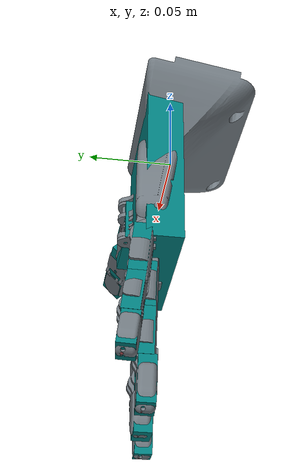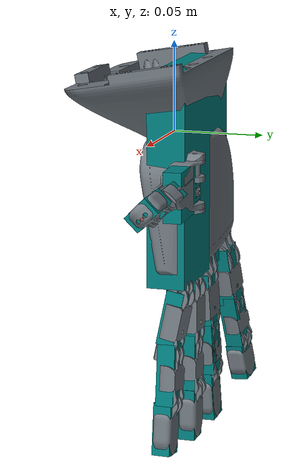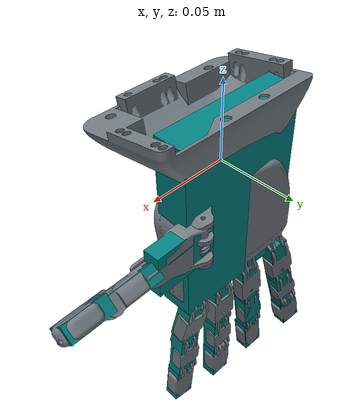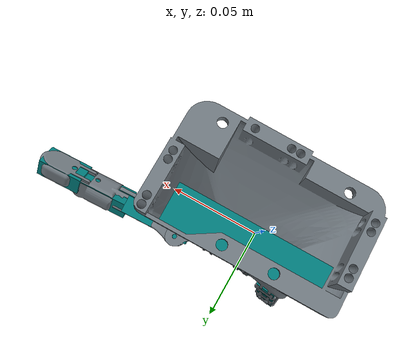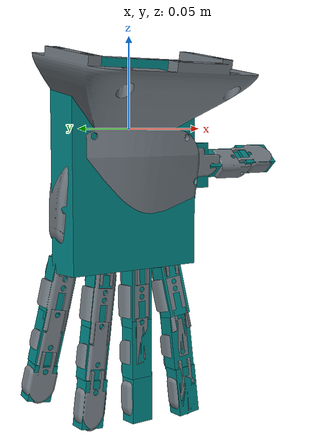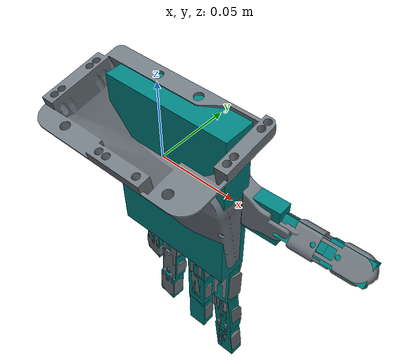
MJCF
<mujoco model="Hand Assembly_URDF">
  <!-- Compiler settings for the model -->
  <compiler angle="radian"
    boundmass="0.001"
    boundinertia="0.001"
    settotalmass="1"/>
  <option gravity="0 -9.81 0"/>

  <!-- Asset definitions for finger meshes and materials -->
  <asset>
    <mesh name="Palm" file="meshes/Palm.STL"/>
    <mesh name="Index_MCP" file="meshes/Index_MCP.STL"/>
    <mesh name="Index_DIP" file="meshes/Index_DIP.STL"/>
    <mesh name="Index_PIP" file="meshes/Index_PIP.STL"/>
    <mesh name="Middle_MCP" file="meshes/Middle_MCP.STL"/>
    <mesh name="Middle_DIP" file="meshes/Middle_DIP.STL"/>
    <mesh name="Middle_PIP" file="meshes/Middle_PIP.STL"/>
    <mesh name="Ring_MCP" file="meshes/Ring_MCP.STL"/>
    <mesh name="Ring_DIP" file="meshes/Ring_DIP.STL"/>
    <mesh name="Ring_PIP" file="meshes/Ring_PIP.STL"/>
    <mesh name="Pinky_MCP" file="meshes/Pinky_MCP.STL"/>
    <mesh name="Pinky_DIP" file="meshes/Pinky_DIP.STL"/>
    <mesh name="Pinky_PIP" file="meshes/Pinky_PIP.STL"/>
    <mesh name="Thumb_MCP" file="meshes/Thumb_MCP.STL"/>
    <mesh name="Thumb_DIP" file="meshes/Thumb_DIP.STL"/>
    <mesh name="Thumb_PIP" file="meshes/Thumb_PIP.STL"/>
    <material name="contact_point_material" rgba="0.737 0.285 0.251 1" specular="0"/>
    <texture name="grid" type="2d" builtin="checker" rgb1=".1 .2 .3"
     rgb2=".2 .3 .4" width="300" height="300"/>
    <material name="grid" texture="grid" texrepeat="100.0 100.0" reflectance=".2"/>
  </asset>

  <!-- Default settings for visual, joint, and collision properties -->
  <default>
    <!-- default classes for friction -->
    <default class="visual">
      <geom friction="1 0.005 0.001" conaffinity="0" contype="0" condim="3"/>
    </default>

    <!-- Add default joint properties for mechanical feel -->
    <default class="joint">
      <joint damping="0.05" armature="0.001" frictionloss="0.01"/>
    </default>

    <!-- default classes for collision -->
    <default class="collision">
      <geom group="2" friction="1.5 0.01 0.001" conaffinity="2" contype="2" condim="3" rgba="0 0.5 0.5 1" density="0" margin="0.001"/>
    </default>
  </default>

  <visual>
    <global azimuth="180" elevation="-20"/>
    <headlight ambient="0.3 0.3 0.3" diffuse="0.6 0.6 0.6" specular="0 0 0"/>
  </visual>

  <!-- World body definition with nested bodies for each finger -->
  <worldbody>

    <!-- Add world reference frame -->
    <body name="world_frame" pos="0 0 0">
      <body name="Palm_Link" pos="0 0 0">
        <joint name="Palm_Joint" type="slide" axis="1 0 0" range="-0.00001 0"/>
        <geom type="mesh" class="visual" rgba="0.439216 0.47451 0.501961 1" mesh="Palm" name="Palm"/>
        <geom name="Palm_c" type="box" size="0.042 0.0105 0.058" pos="0.004 0.009 -0.02" quat="1 0 0 0" class="collision" />

        <!-- Index finger -->
        <body name="Index_MCP_Link" pos="0.0322 0.0146007 -0.08022" quat="-0.410779 0.525515 0.556422 0.495469">
          <inertial pos="0.0288724 -1.28993e-08 0.00378475" quat="0 0.706065 0 0.708147" mass="0.00327912" diaginertia="4.20817e-07 3.58574e-07 1.41288e-07"/>
          <joint name="Index_MCP_Joint" pos="0 0 0" axis="0 1.0 0" range="0 2.44222" class="joint"/>
          <geom pos="-0.016 0.005 0.0001" quat="1 0 0 0" type="box" class="collision" size="0.015 0.007 0.005" name="Index_MCP_C" />
          <geom pos="-0.046 0.005 -0.003" quat="1 0 0 0" type="mesh" class="visual" rgba="0.439216 0.47451 0.501961 1" mesh="Index_MCP" name="Index_MCP"/>
          <body name="Index_DIP_Link" pos="-0.035057 0 0.002" quat="0.996195 0 0.0871543 0">
            <inertial pos="0.000734414 -1.34435e-07 0.00333493" quat="0 0.724885 0 0.68887" mass="0.0030053" diaginertia="2.77975e-07 2.50136e-07 9.09498e-08"/>
            <joint name="Index_DIP_Joint" pos="0 0 0" axis="0 1 0" range="0 2.09" class="joint"/>
            <geom pos="-0.012 0.005 -0.003" quat="1 0 0 0" type="mesh" class="visual" rgba="0.439216 0.47451 0.501961 1" mesh="Index_DIP" name="Index_DIP" />
            <geom pos="-0.012 0.005 0.00" quat="1 0 0 0" type="box" class="collision"  size="0.017 0.007 0.005" name="Index_DIP_c" />
            <body name="Index_PIP_Link" pos="-0.027 0.0045 0.001">
              <inertial pos="-0.0274083 1.00211e-07 0.00320314" quat="3.68488e-06 0.687097 -3.89655e-06 0.726565" mass="0.00356977" diaginertia="3.32817e-07 2.91756e-07 1.1129e-07"/>
              <joint name="Index_PIP_Joint" pos="0 0 0" axis="0 1 0" range="0 2.09" class="joint"/>
              <geom pos="0.013 0.0004 -0.005"  type="mesh" class="visual" rgba="0.439216 0.47451 0.501961 1" mesh="Index_PIP" name="Index_PIP" />
              <geom pos="-0.015 0.0004 -0.002"  type="box" class="collision" size="0.0145 0.007 0.005" name="Index_PIP_c" />
              <geom type="sphere" size="0.001" pos="-0.03 0 0" rgba="1 0 0 0.3" class="visual" name="Index_TIP"/>
            </body>
          </body>
        </body>

        <!-- Middle finger -->
        <body name="Middle_MCP_Link" pos="0.01518 0.0135414 -0.081" quat="0.5 -0.5 -0.5 -0.5">
          <inertial pos="0.0288724 -9.49408e-09 0.00378477" quat="0 0.706065 0 0.708147" mass="0.00327911" diaginertia="4.20815e-07 3.58572e-07 1.41288e-07"/>
          <joint name="Middle_MCP_Joint" pos="0 0 0" axis="0 1 0" range="0 2.44222" class="joint"/>
          <geom pos="-0.046 0 -0.003" quat="1 0 0 0" type="mesh" class="visual" rgba="0.439216 0.47451 0.501961 1" mesh="Middle_MCP" name="Middle_MCP" />
          <geom pos="-0.016 0 0.0001" quat="1 0 0 0" type="box" class="collision" size="0.017 0.007 0.005" name="Middle_MCP_c" />
          <body name="Middle_DIP_Link" pos="-0.034 0 0">
            <inertial pos="0.000734412 -1.31357e-07 0.00333494" quat="0 0.724885 0 0.68887" mass="0.0030053" diaginertia="2.77975e-07 2.50136e-07 9.09499e-08"/>
            <joint name="Middle_DIP_Joint" pos="0 0 0" axis="0 1 0" range="0 2.09" class="joint"/>
            <geom pos="-0.012 0 -0.003" quat="1 0 0 0" type="mesh" class="visual" rgba="0.439216 0.47451 0.501961 1" mesh="Middle_DIP" name="Middle_DIP" />
            <geom pos="-0.012 0 0" quat="1 0 0 0" type="box" class="collision" size="0.017 0.007 0.005" name="Middle_DIP_c" />
            <body name="Middle_PIP_Link" pos="-0.026 0 0.002">
              <inertial pos="-0.0274083 9.97469e-08 0.00320314" quat="3.35268e-06 0.687097 -3.54527e-06 0.726565" mass="0.00356977" diaginertia="3.32817e-07 2.91756e-07 1.1129e-07"/>
              <joint name="Middle_PIP_Joint" pos="0 0 0" axis="0 1 0" range="0 2.09" class="joint"/>
              <geom pos="0.014 0 -0.0045" quat="1 0 0 0" type="mesh" class="visual" rgba="0.439216 0.47451 0.501961 1" mesh="Middle_PIP" name="Middle_PIP" />
              <geom pos="-0.015 0.0004 -0.002" quat="1 0 0 0" type="box" class="collision" size="0.0145 0.007 0.005" name="Middle_PIP_c" />
              <geom type="sphere" size="0.001" pos="-0.029 0.000 0.00" rgba="1 0 0 0.3" class="visual" name="Middle_TIP"/>
            </body>
          </body>
        </body>

        <!-- Ring finger -->
        <body name="Ring_MCP_Link" pos="-0.0088 0.01453 -0.08009" quat="0.519479 -0.531219 -0.449398 -0.495973">
          <inertial pos="0.0288724 -7.11557e-09 0.00378476" quat="0 0.706065 0 0.708147" mass="0.00327912" diaginertia="4.20817e-07 3.58574e-07 1.41288e-07"/>
          <joint name="Ring_MCP_Joint" pos="0 0 0" axis="0 1 0" range="0 2.44222" class="joint"/>
          <geom pos="-0.046 0 -0.004" quat="1 0 0 0" type="mesh" class="visual" rgba="0.439216 0.47451 0.501961 1" mesh="Ring_MCP" name="Ring_MCP" />
          <geom pos="-0.016 0 0.0001" quat="1 0 0 0" type="box" class="collision" size="0.015 0.007 0.005" name="Ring_MCP_c" />
          <body name="Ring_DIP_Link" pos="-0.036 0 0">
            <inertial pos="0.000734409 -1.29347e-07 0.00333494" quat="0 0.724885 0 0.68887" mass="0.00300529" diaginertia="2.77975e-07 2.50136e-07 9.09499e-08"/>
            <joint name="Ring_DIP_Joint" pos="0 0 0" axis="0 1 0" range="0 2.09" class="joint"/>
            <geom pos="-0.01 0 -0.004" quat="1 0 0 0" type="mesh" class="visual" rgba="0.439216 0.47451 0.501961 1" mesh="Ring_DIP" name="Ring_DIP" />
            <geom pos="-0.01 0 0" quat="1 0 0 0" type="box" class="collision" size="0.015 0.007 0.005" name="Ring_DIP_c" />
            <body name="Ring_PIP_Link" pos="-0.025746 0 0">
              <inertial pos="-0.0274083 1.00945e-07 0.00320315" quat="3.216e-06 0.687098 -3.40073e-06 0.726565" mass="0.00356976" diaginertia="3.32816e-07 2.91756e-07 1.1129e-07"/>
              <joint name="Ring_PIP_Joint" pos="0 0 0" axis="0 1 0" range="0 2.09" class="joint"/>
              <geom pos="0.015 0 -0.005" quat="1 0 0 0" type="mesh" class="visual" rgba="0.439216 0.47451 0.501961 1" mesh="Ring_PIP" name="Ring_PIP" />
              <geom pos="-0.013 0.0001 -0.0017" quat="1 0 0 0" type="box" class="collision" size="0.014 0.007 0.005" name="Ring_PIP_c" />
              <geom type="sphere" size="0.001" pos="-0.028 0.000 0.00" rgba="1 0 0 0.3" class="visual" name="Ring_TIP"/>
            </body>
          </body>
        </body>

        <!-- Pinky finger -->
        <body name="Pinky_MCP_Link" pos="-0.030617 0.020313 -0.07398" quat="0.535562 -0.548866 -0.394288 -0.506416">
          <inertial pos="0.0268917 -2.1328e-08 0.00337657" quat="2.96624e-06 0.709985 -2.94214e-06 0.704217" mass="0.00308279" diaginertia="3.86718e-07 3.31476e-07 1.30735e-07"/>
          <joint name="Pinky_MCP_Joint" pos="0 0 0" axis="0 1 0" range="0 2.44222" class="joint"/>
          <geom pos="-0.042 0 -0.004" quat="1 0 0 0" type="mesh" class="visual" rgba="0.439216 0.47451 0.501961 1" mesh="Pinky_MCP" name="Pinky_MCP" />
          <geom pos="-0.014 0 -0.00" quat="1 0 0 0" type="box" class="collision" size="0.017 0.007 0.005" name="Pinky_MCP_c" />
          <body name="Pinky_DIP_Link" pos="-0.032 0 0" quat="0.999904 0 0.0138671 0">
            <inertial pos="0.000757212 -1.38277e-07 0.00329943" quat="0 0.728086 0 0.685486" mass="0.00260945" diaginertia="2.12533e-07 1.89485e-07 7.7225e-08"/>
            <joint name="Pinky_DIP_Joint" pos="0 0 0" axis="0 1 0" range="0 2.09" class="joint"/>
            <geom pos="-0.01 0 -0.0037" quat="1 0 0 0" type="mesh" class="visual" rgba="0.439216 0.47451 0.501961 1" mesh="Pinky_DIP" name="Pinky_DIP" />
            <geom pos="-0.01 0 -0.000" quat="1 0 0 0" type="box" class="collision" size="0.015 0.007 0.005" name="Pinky_DIP_c" />
            <body name="Pinky_PIP_Link" pos="-0.023 0 0.001">
              <inertial pos="-0.0236575 -8.70958e-08 0.00338829" quat="4.96235e-06 0.688645 -5.22503e-06 0.725099" mass="0.00306875" diaginertia="2.3085e-07 1.96147e-07 9.6228e-08"/>
              <joint name="Pinky_PIP_Joint" pos="0 0 0" axis="0 1 0" range="0 2.09" class="joint"/>
              <geom pos="0.013 0 -0.005" quat="1 0 0 0" type="mesh" class="visual" rgba="0.439216 0.47451 0.501961 1" mesh="Pinky_PIP" name="Pinky_PIP" />
              <geom pos="-0.0125 0.0001 -0.0017" quat="1 0 0 0" type="box" class="collision" size="0.0105 0.007 0.005" name="Pinky_PIP_c" />
              <geom type="sphere" size="0.001" pos="-0.024 0.000 0.00" rgba="1 0 0 0.3" class="visual" name="Pinky_TIP"/>
            </body>
          </body>
        </body>

        <!-- Thumb -->
        <body name="Thumb_MCP_Link" pos="0.037688 0.022225 -0.025118" quat="0.707016 -0.707018 -0.011262 0.0112619">
          <inertial pos="0.0162526 -0.00468252 0.00333969" quat="0.00826993 0.759157 -0.00480907 0.650837" mass="0.00526715" diaginertia="7.53121e-07 5.49276e-07 3.69326e-07"/>
          <joint name="Thumb_CMC_Joint" pos="0 0 0" axis="0 1 0" range="-3.314 0" class="joint"/>
          <geom pos="0 0 -0.007" quat="1 0 0 0" type="mesh" class="visual" rgba="0.439216 0.47451 0.501961 1" mesh="Thumb_MCP" name="Thumb_MCP" />
          <geom pos="0.013 -0.003 -0.0032" quat="1 0 0 0" type="box" class="collision" size="0.02 0.0135 0.005" name="Thumb_MCP_c" />
          <body name="Thumb_DIP_Link" pos="0.033935 -0.0044094 -0.0065999" quat="-2.59736e-06 -2.59734e-06 0.707105 0.707109">
            <inertial pos="-0.000359156 5.0434e-05 0.00349653" quat="0.00102806 0.710958 0.0055407 0.703212" mass="0.0033002" diaginertia="3.34624e-07 2.79543e-07 1.24607e-07"/>
            <joint name="Thumb_MCP_Joint" pos="0 0 0" axis="0 1 0" range="0 1.57" class="joint"/>
            <geom pos="-0.013 0 -0.0019" quat="0.921061 -0.389418 0 0" type="mesh" class="visual" rgba="0.439216 0.47451 0.501961 1" mesh="Thumb_DIP" name="Thumb_DIP" />
            <geom pos="-0.013 0.003 0.0005" quat="0.921061 -0.389418 0 0" type="box" class="collision" size="0.015 0.007 0.005" name="Thumb_DIP_c" />
            <body name="Thumb_PIP_Link" pos="-0.027794 0.0035 7e-06" quat="0.923879 -0.382684 0 0">
              <inertial pos="-0.0282104 -4.96887e-08 0.00319437" quat="-9.1855e-06 0.685351 9.75996e-06 0.728213" mass="0.00347336" diaginertia="3.12351e-07 2.59469e-07 1.22086e-07"/>
              <joint name="Thumb_IP_Joint" pos="0 0 0" axis="0 1 0" range="0 2.09" class="joint"/>
              <geom pos="0.015 0 -0.005" quat="1 0 0 0" type="mesh" class="visual" rgba="0.439216 0.47451 0.501961 1" mesh="Thumb_PIP" name="Thumb_PIP" />
              <geom pos="-0.013 0 -0.0017" quat="1 0 0 0" type="box" class="collision" size="0.013 0.0075 0.005" name="Thumb_PIP_c" />
              <geom type="sphere" size="0.001" pos="-0.028 0 0" rgba="1 0 0 0.3" class="visual" name="Thumb_TIP"/>
            </body>
          </body>
        </body>
      </body>
    </body>

  </worldbody>
<contact>
  <exclude body1="Palm_Link"  body2="Thumb_MCP_Link"/>
  <exclude body1="Palm_Link"  body2="Ring_MCP_Link"/>
  <exclude body1="Palm_Link"  body2="Pinky_MCP_Link"/>
  <exclude body1="Palm_Link"  body2="Middle_MCP_Link"/>
  <exclude body1="Palm_Link"  body2="Index_MCP_Link"/>
</contact>

  <actuator>
    <general name="Index_MCP_actuator" joint="Index_MCP_Joint" gainprm="2.44 0" biastype="affine" biasprm="0" dyntype="none" />
    <general name="Index_DIP_actuator" joint="Index_DIP_Joint" gainprm="2.09 0" biastype="affine" biasprm="0" dyntype="none" />
    <general name="Index_PIP_actuator" joint="Index_PIP_Joint" gainprm="2.09 0" biastype="affine" biasprm="0" dyntype="none" />
    <general name="Middle_MCP_actuator" joint="Middle_MCP_Joint" gainprm="2.44 0" biastype="affine" biasprm="0" dyntype="none" />
    <general name="Middle_DIP_actuator" joint="Middle_DIP_Joint" gainprm="2.09 0" biastype="affine" biasprm="0" dyntype="none" />
    <general name="Middle_PIP_actuator" joint="Middle_PIP_Joint" gainprm="2.09 0" biastype="affine" biasprm="0" dyntype="none" />
    <general name="Ring_MCP_actuator" joint="Ring_MCP_Joint" gainprm="2.44 0" biastype="affine" biasprm="0" dyntype="none" />
    <general name="Ring_DIP_actuator" joint="Ring_DIP_Joint" gainprm="2.09 0" biastype="affine" biasprm="0" dyntype="none" />
    <general name="Ring_PIP_actuator" joint="Ring_PIP_Joint" gainprm="2.09 0" biastype="affine" biasprm="0" dyntype="none" />
    <general name="Pinky_MCP_actuator" joint="Pinky_MCP_Joint" gainprm="2.44 0" biastype="affine" biasprm="0" dyntype="none" />
    <general name="Pinky_DIP_actuator" joint="Pinky_DIP_Joint" gainprm="2.09 0" biastype="affine" biasprm="0" dyntype="none" />
    <general name="Pinky_PIP_actuator" joint="Pinky_PIP_Joint" gainprm="2.09 0" biastype="affine" biasprm="0" dyntype="none" />
    <general name="Thumb_CMC_actuator" joint="Thumb_CMC_Joint" gainprm="3.314 0" biastype="affine" biasprm="0" dyntype="none" />
    <general name="Thumb_MCP_actuator" joint="Thumb_MCP_Joint" gainprm="1.57 0" biastype="affine" biasprm="0" dyntype="none" />
    <general name="Thumb_PIP_actuator" joint="Thumb_IP_Joint" gainprm="2.09 0" biastype="affine" biasprm="0" dyntype="none" />
  </actuator>
</mujoco>
